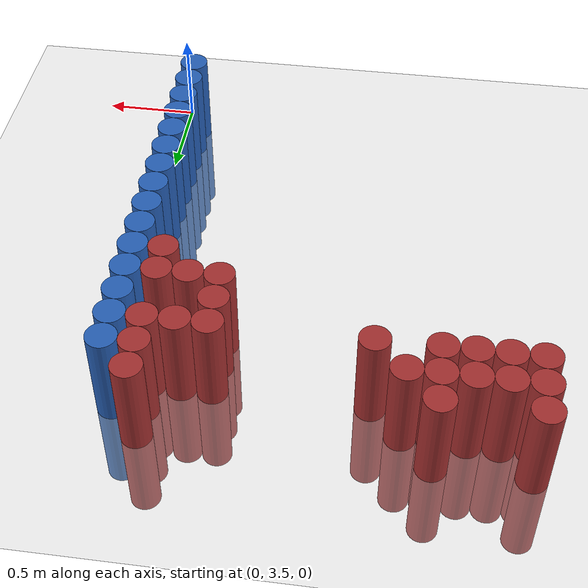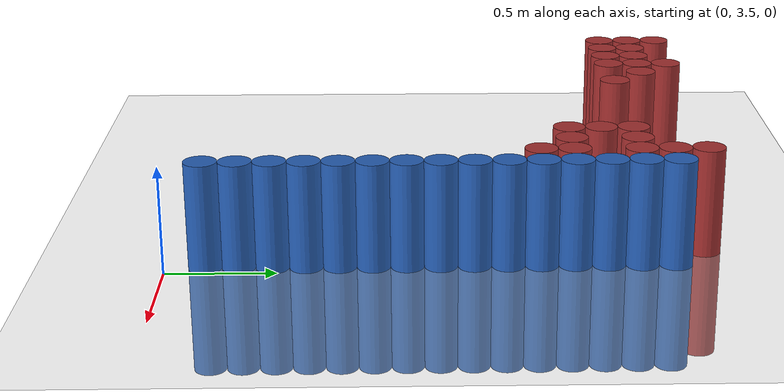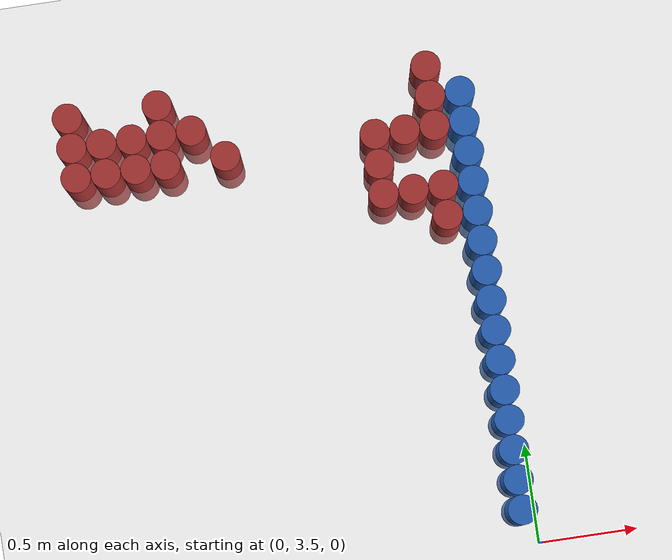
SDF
<sdf version="1.6">
 <world name="default">
  <model name="ground_plane">
   <static>1</static>
   <link name="link">
    <collision name="collision">
     <geometry><plane><normal>0 0 1</normal><size>100 100</size></plane></geometry>
     <surface><friction><ode><mu>100</mu><mu2>50</mu2></ode></friction></surface>
    </collision>
    <visual name="visual">
     <cast_shadows>0</cast_shadows>
     <geometry><plane><normal>0 0 1</normal><size>100 100</size></plane></geometry>
     <material>
      <script><uri>file://media/materials/scripts/gazebo.material</uri><name>Gazebo/Grey</name></script>
     </material>
    </visual>
   </link>
  </model>
  <model name="unit_cylinder_76">
   <static>1</static>
   <pose>-0.075000 3.675000 0.000000 0.000000 0.000000 0.000000</pose>
   <link name="link">
    <inertial>
     <mass>1</mass>
     <inertia><ixx>0.145833</ixx><ixy>0</ixy><ixz>0</ixz><iyy>0.145833</iyy><iyz>0</iyz><izz>0.125</izz></inertia>
    </inertial>
    <collision name="collision">
     <geometry><cylinder><radius>0.075000</radius><length>1</length></cylinder></geometry>
    </collision>
    <visual name="visual">
     <geometry><cylinder><radius>0.075000</radius><length>1</length></cylinder></geometry>
     <material>
      <ambient>0.152000 0.379000 0.720000 1</ambient>
      <diffuse>0.152000 0.379000 0.720000 1</diffuse>
     </material>
     <material>
      <script><name>Gazebo/Grey</name><uri>file://media/materials/scripts/gazebo.material</uri></script>
     </material>
    </visual>
    <sensor name="sensor_contact" type="contact"><contact><collision>collision</collision></contact></sensor>
   </link>
   <plugin filename="gz-sim-touchplugin-system" name="gz::sim::systems::TouchPlugin">
    <target>robot</target>
    <namespace>robot</namespace>
    <time>0.001</time>
    <enabled>true</enabled>
   </plugin>
  </model>
  <model name="unit_cylinder_78">
   <static>1</static>
   <pose>-0.075000 3.825000 0.000000 0.000000 0.000000 0.000000</pose>
   <link name="link">
    <inertial>
     <mass>1</mass>
     <inertia><ixx>0.145833</ixx><ixy>0</ixy><ixz>0</ixz><iyy>0.145833</iyy><iyz>0</iyz><izz>0.125</izz></inertia>
    </inertial>
    <collision name="collision">
     <geometry><cylinder><radius>0.075000</radius><length>1</length></cylinder></geometry>
    </collision>
    <visual name="visual">
     <geometry><cylinder><radius>0.075000</radius><length>1</length></cylinder></geometry>
     <material>
      <ambient>0.152000 0.379000 0.720000 1</ambient>
      <diffuse>0.152000 0.379000 0.720000 1</diffuse>
     </material>
     <material>
      <script><name>Gazebo/Grey</name><uri>file://media/materials/scripts/gazebo.material</uri></script>
     </material>
    </visual>
    <sensor name="sensor_contact" type="contact"><contact><collision>collision</collision></contact></sensor>
   </link>
   <plugin filename="gz-sim-touchplugin-system" name="gz::sim::systems::TouchPlugin">
    <target>robot</target>
    <namespace>robot</namespace>
    <time>0.001</time>
    <enabled>true</enabled>
   </plugin>
  </model>
  <model name="unit_cylinder_80">
   <static>1</static>
   <pose>-0.075000 3.975000 0.000000 0.000000 0.000000 0.000000</pose>
   <link name="link">
    <inertial>
     <mass>1</mass>
     <inertia><ixx>0.145833</ixx><ixy>0</ixy><ixz>0</ixz><iyy>0.145833</iyy><iyz>0</iyz><izz>0.125</izz></inertia>
    </inertial>
    <collision name="collision">
     <geometry><cylinder><radius>0.075000</radius><length>1</length></cylinder></geometry>
    </collision>
    <visual name="visual">
     <geometry><cylinder><radius>0.075000</radius><length>1</length></cylinder></geometry>
     <material>
      <ambient>0.152000 0.379000 0.720000 1</ambient>
      <diffuse>0.152000 0.379000 0.720000 1</diffuse>
     </material>
     <material>
      <script><name>Gazebo/Grey</name><uri>file://media/materials/scripts/gazebo.material</uri></script>
     </material>
    </visual>
    <sensor name="sensor_contact" type="contact"><contact><collision>collision</collision></contact></sensor>
   </link>
   <plugin filename="gz-sim-touchplugin-system" name="gz::sim::systems::TouchPlugin">
    <target>robot</target>
    <namespace>robot</namespace>
    <time>0.001</time>
    <enabled>true</enabled>
   </plugin>
  </model>
  <model name="unit_cylinder_82">
   <static>1</static>
   <pose>-0.075000 4.125000 0.000000 0.000000 0.000000 0.000000</pose>
   <link name="link">
    <inertial>
     <mass>1</mass>
     <inertia><ixx>0.145833</ixx><ixy>0</ixy><ixz>0</ixz><iyy>0.145833</iyy><iyz>0</iyz><izz>0.125</izz></inertia>
    </inertial>
    <collision name="collision">
     <geometry><cylinder><radius>0.075000</radius><length>1</length></cylinder></geometry>
    </collision>
    <visual name="visual">
     <geometry><cylinder><radius>0.075000</radius><length>1</length></cylinder></geometry>
     <material>
      <ambient>0.152000 0.379000 0.720000 1</ambient>
      <diffuse>0.152000 0.379000 0.720000 1</diffuse>
     </material>
     <material>
      <script><name>Gazebo/Grey</name><uri>file://media/materials/scripts/gazebo.material</uri></script>
     </material>
    </visual>
    <sensor name="sensor_contact" type="contact"><contact><collision>collision</collision></contact></sensor>
   </link>
   <plugin filename="gz-sim-touchplugin-system" name="gz::sim::systems::TouchPlugin">
    <target>robot</target>
    <namespace>robot</namespace>
    <time>0.001</time>
    <enabled>true</enabled>
   </plugin>
  </model>
  <model name="unit_cylinder_84">
   <static>1</static>
   <pose>-0.075000 4.275000 0.000000 0.000000 0.000000 0.000000</pose>
   <link name="link">
    <inertial>
     <mass>1</mass>
     <inertia><ixx>0.145833</ixx><ixy>0</ixy><ixz>0</ixz><iyy>0.145833</iyy><iyz>0</iyz><izz>0.125</izz></inertia>
    </inertial>
    <collision name="collision">
     <geometry><cylinder><radius>0.075000</radius><length>1</length></cylinder></geometry>
    </collision>
    <visual name="visual">
     <geometry><cylinder><radius>0.075000</radius><length>1</length></cylinder></geometry>
     <material>
      <ambient>0.152000 0.379000 0.720000 1</ambient>
      <diffuse>0.152000 0.379000 0.720000 1</diffuse>
     </material>
     <material>
      <script><name>Gazebo/Grey</name><uri>file://media/materials/scripts/gazebo.material</uri></script>
     </material>
    </visual>
    <sensor name="sensor_contact" type="contact"><contact><collision>collision</collision></contact></sensor>
   </link>
   <plugin filename="gz-sim-touchplugin-system" name="gz::sim::systems::TouchPlugin">
    <target>robot</target>
    <namespace>robot</namespace>
    <time>0.001</time>
    <enabled>true</enabled>
   </plugin>
  </model>
  <model name="unit_cylinder_86">
   <static>1</static>
   <pose>-0.075000 4.425000 0.000000 0.000000 0.000000 0.000000</pose>
   <link name="link">
    <inertial>
     <mass>1</mass>
     <inertia><ixx>0.145833</ixx><ixy>0</ixy><ixz>0</ixz><iyy>0.145833</iyy><iyz>0</iyz><izz>0.125</izz></inertia>
    </inertial>
    <collision name="collision">
     <geometry><cylinder><radius>0.075000</radius><length>1</length></cylinder></geometry>
    </collision>
    <visual name="visual">
     <geometry><cylinder><radius>0.075000</radius><length>1</length></cylinder></geometry>
     <material>
      <ambient>0.152000 0.379000 0.720000 1</ambient>
      <diffuse>0.152000 0.379000 0.720000 1</diffuse>
     </material>
     <material>
      <script><name>Gazebo/Grey</name><uri>file://media/materials/scripts/gazebo.material</uri></script>
     </material>
    </visual>
    <sensor name="sensor_contact" type="contact"><contact><collision>collision</collision></contact></sensor>
   </link>
   <plugin filename="gz-sim-touchplugin-system" name="gz::sim::systems::TouchPlugin">
    <target>robot</target>
    <namespace>robot</namespace>
    <time>0.001</time>
    <enabled>true</enabled>
   </plugin>
  </model>
  <model name="unit_cylinder_88">
   <static>1</static>
   <pose>-0.075000 4.575000 0.000000 0.000000 0.000000 0.000000</pose>
   <link name="link">
    <inertial>
     <mass>1</mass>
     <inertia><ixx>0.145833</ixx><ixy>0</ixy><ixz>0</ixz><iyy>0.145833</iyy><iyz>0</iyz><izz>0.125</izz></inertia>
    </inertial>
    <collision name="collision">
     <geometry><cylinder><radius>0.075000</radius><length>1</length></cylinder></geometry>
    </collision>
    <visual name="visual">
     <geometry><cylinder><radius>0.075000</radius><length>1</length></cylinder></geometry>
     <material>
      <ambient>0.152000 0.379000 0.720000 1</ambient>
      <diffuse>0.152000 0.379000 0.720000 1</diffuse>
     </material>
     <material>
      <script><name>Gazebo/Grey</name><uri>file://media/materials/scripts/gazebo.material</uri></script>
     </material>
    </visual>
    <sensor name="sensor_contact" type="contact"><contact><collision>collision</collision></contact></sensor>
   </link>
   <plugin filename="gz-sim-touchplugin-system" name="gz::sim::systems::TouchPlugin">
    <target>robot</target>
    <namespace>robot</namespace>
    <time>0.001</time>
    <enabled>true</enabled>
   </plugin>
  </model>
  <model name="unit_cylinder_90">
   <static>1</static>
   <pose>-0.075000 4.725000 0.000000 0.000000 0.000000 0.000000</pose>
   <link name="link">
    <inertial>
     <mass>1</mass>
     <inertia><ixx>0.145833</ixx><ixy>0</ixy><ixz>0</ixz><iyy>0.145833</iyy><iyz>0</iyz><izz>0.125</izz></inertia>
    </inertial>
    <collision name="collision">
     <geometry><cylinder><radius>0.075000</radius><length>1</length></cylinder></geometry>
    </collision>
    <visual name="visual">
     <geometry><cylinder><radius>0.075000</radius><length>1</length></cylinder></geometry>
     <material>
      <ambient>0.152000 0.379000 0.720000 1</ambient>
      <diffuse>0.152000 0.379000 0.720000 1</diffuse>
     </material>
     <material>
      <script><name>Gazebo/Grey</name><uri>file://media/materials/scripts/gazebo.material</uri></script>
     </material>
    </visual>
    <sensor name="sensor_contact" type="contact"><contact><collision>collision</collision></contact></sensor>
   </link>
   <plugin filename="gz-sim-touchplugin-system" name="gz::sim::systems::TouchPlugin">
    <target>robot</target>
    <namespace>robot</namespace>
    <time>0.001</time>
    <enabled>true</enabled>
   </plugin>
  </model>
  <model name="unit_cylinder_92">
   <static>1</static>
   <pose>-0.075000 4.875000 0.000000 0.000000 0.000000 0.000000</pose>
   <link name="link">
    <inertial>
     <mass>1</mass>
     <inertia><ixx>0.145833</ixx><ixy>0</ixy><ixz>0</ixz><iyy>0.145833</iyy><iyz>0</iyz><izz>0.125</izz></inertia>
    </inertial>
    <collision name="collision">
     <geometry><cylinder><radius>0.075000</radius><length>1</length></cylinder></geometry>
    </collision>
    <visual name="visual">
     <geometry><cylinder><radius>0.075000</radius><length>1</length></cylinder></geometry>
     <material>
      <ambient>0.152000 0.379000 0.720000 1</ambient>
      <diffuse>0.152000 0.379000 0.720000 1</diffuse>
     </material>
     <material>
      <script><name>Gazebo/Grey</name><uri>file://media/materials/scripts/gazebo.material</uri></script>
     </material>
    </visual>
    <sensor name="sensor_contact" type="contact"><contact><collision>collision</collision></contact></sensor>
   </link>
   <plugin filename="gz-sim-touchplugin-system" name="gz::sim::systems::TouchPlugin">
    <target>robot</target>
    <namespace>robot</namespace>
    <time>0.001</time>
    <enabled>true</enabled>
   </plugin>
  </model>
  <model name="unit_cylinder_94">
   <static>1</static>
   <pose>-0.075000 5.025000 0.000000 0.000000 0.000000 0.000000</pose>
   <link name="link">
    <inertial>
     <mass>1</mass>
     <inertia><ixx>0.145833</ixx><ixy>0</ixy><ixz>0</ixz><iyy>0.145833</iyy><iyz>0</iyz><izz>0.125</izz></inertia>
    </inertial>
    <collision name="collision">
     <geometry><cylinder><radius>0.075000</radius><length>1</length></cylinder></geometry>
    </collision>
    <visual name="visual">
     <geometry><cylinder><radius>0.075000</radius><length>1</length></cylinder></geometry>
     <material>
      <ambient>0.152000 0.379000 0.720000 1</ambient>
      <diffuse>0.152000 0.379000 0.720000 1</diffuse>
     </material>
     <material>
      <script><name>Gazebo/Grey</name><uri>file://media/materials/scripts/gazebo.material</uri></script>
     </material>
    </visual>
    <sensor name="sensor_contact" type="contact"><contact><collision>collision</collision></contact></sensor>
   </link>
   <plugin filename="gz-sim-touchplugin-system" name="gz::sim::systems::TouchPlugin">
    <target>robot</target>
    <namespace>robot</namespace>
    <time>0.001</time>
    <enabled>true</enabled>
   </plugin>
  </model>
  <model name="unit_cylinder_228">
   <static>1</static>
   <pose>-2.025000 5.625000 0.000000 0.000000 0.000000 0.000000</pose>
   <link name="link">
    <inertial>
     <mass>1</mass>
     <inertia><ixx>0.145833</ixx><ixy>0</ixy><ixz>0</ixz><iyy>0.145833</iyy><iyz>0</iyz><izz>0.125</izz></inertia>
    </inertial>
    <collision name="collision">
     <geometry><cylinder><radius>0.075000</radius><length>1</length></cylinder></geometry>
    </collision>
    <visual name="visual">
     <geometry><cylinder><radius>0.075000</radius><length>1</length></cylinder></geometry>
     <material>
      <ambient>0.648000 0.192000 0.192000 1</ambient>
      <diffuse>0.648000 0.192000 0.192000 1</diffuse>
     </material>
     <material>
      <script><name>Gazebo/Grey</name><uri>file://media/materials/scripts/gazebo.material</uri></script>
     </material>
    </visual>
    <sensor name="sensor_contact" type="contact"><contact><collision>collision</collision></contact></sensor>
   </link>
   <plugin filename="gz-sim-touchplugin-system" name="gz::sim::systems::TouchPlugin">
    <target>robot</target>
    <namespace>robot</namespace>
    <time>0.001</time>
    <enabled>true</enabled>
   </plugin>
  </model>
  <model name="unit_cylinder_229">
   <static>1</static>
   <pose>-2.025000 5.775000 0.000000 0.000000 0.000000 0.000000</pose>
   <link name="link">
    <inertial>
     <mass>1</mass>
     <inertia><ixx>0.145833</ixx><ixy>0</ixy><ixz>0</ixz><iyy>0.145833</iyy><iyz>0</iyz><izz>0.125</izz></inertia>
    </inertial>
    <collision name="collision">
     <geometry><cylinder><radius>0.075000</radius><length>1</length></cylinder></geometry>
    </collision>
    <visual name="visual">
     <geometry><cylinder><radius>0.075000</radius><length>1</length></cylinder></geometry>
     <material>
      <ambient>0.648000 0.192000 0.192000 1</ambient>
      <diffuse>0.648000 0.192000 0.192000 1</diffuse>
     </material>
     <material>
      <script><name>Gazebo/Grey</name><uri>file://media/materials/scripts/gazebo.material</uri></script>
     </material>
    </visual>
    <sensor name="sensor_contact" type="contact"><contact><collision>collision</collision></contact></sensor>
   </link>
   <plugin filename="gz-sim-touchplugin-system" name="gz::sim::systems::TouchPlugin">
    <target>robot</target>
    <namespace>robot</namespace>
    <time>0.001</time>
    <enabled>true</enabled>
   </plugin>
  </model>
  <model name="unit_cylinder_230">
   <static>1</static>
   <pose>-2.025000 5.925000 0.000000 0.000000 0.000000 0.000000</pose>
   <link name="link">
    <inertial>
     <mass>1</mass>
     <inertia><ixx>0.145833</ixx><ixy>0</ixy><ixz>0</ixz><iyy>0.145833</iyy><iyz>0</iyz><izz>0.125</izz></inertia>
    </inertial>
    <collision name="collision">
     <geometry><cylinder><radius>0.075000</radius><length>1</length></cylinder></geometry>
    </collision>
    <visual name="visual">
     <geometry><cylinder><radius>0.075000</radius><length>1</length></cylinder></geometry>
     <material>
      <ambient>0.648000 0.192000 0.192000 1</ambient>
      <diffuse>0.648000 0.192000 0.192000 1</diffuse>
     </material>
     <material>
      <script><name>Gazebo/Grey</name><uri>file://media/materials/scripts/gazebo.material</uri></script>
     </material>
    </visual>
    <sensor name="sensor_contact" type="contact"><contact><collision>collision</collision></contact></sensor>
   </link>
   <plugin filename="gz-sim-touchplugin-system" name="gz::sim::systems::TouchPlugin">
    <target>robot</target>
    <namespace>robot</namespace>
    <time>0.001</time>
    <enabled>true</enabled>
   </plugin>
  </model>
  <model name="unit_cylinder_239">
   <static>1</static>
   <pose>-1.875000 5.625000 0.000000 0.000000 0.000000 0.000000</pose>
   <link name="link">
    <inertial>
     <mass>1</mass>
     <inertia><ixx>0.145833</ixx><ixy>0</ixy><ixz>0</ixz><iyy>0.145833</iyy><iyz>0</iyz><izz>0.125</izz></inertia>
    </inertial>
    <collision name="collision">
     <geometry><cylinder><radius>0.075000</radius><length>1</length></cylinder></geometry>
    </collision>
    <visual name="visual">
     <geometry><cylinder><radius>0.075000</radius><length>1</length></cylinder></geometry>
     <material>
      <ambient>0.648000 0.192000 0.192000 1</ambient>
      <diffuse>0.648000 0.192000 0.192000 1</diffuse>
     </material>
     <material>
      <script><name>Gazebo/Grey</name><uri>file://media/materials/scripts/gazebo.material</uri></script>
     </material>
    </visual>
    <sensor name="sensor_contact" type="contact"><contact><collision>collision</collision></contact></sensor>
   </link>
   <plugin filename="gz-sim-touchplugin-system" name="gz::sim::systems::TouchPlugin">
    <target>robot</target>
    <namespace>robot</namespace>
    <time>0.001</time>
    <enabled>true</enabled>
   </plugin>
  </model>
  <model name="unit_cylinder_240">
   <static>1</static>
   <pose>-1.875000 5.775000 0.000000 0.000000 0.000000 0.000000</pose>
   <link name="link">
    <inertial>
     <mass>1</mass>
     <inertia><ixx>0.145833</ixx><ixy>0</ixy><ixz>0</ixz><iyy>0.145833</iyy><iyz>0</iyz><izz>0.125</izz></inertia>
    </inertial>
    <collision name="collision">
     <geometry><cylinder><radius>0.075000</radius><length>1</length></cylinder></geometry>
    </collision>
    <visual name="visual">
     <geometry><cylinder><radius>0.075000</radius><length>1</length></cylinder></geometry>
     <material>
      <ambient>0.648000 0.192000 0.192000 1</ambient>
      <diffuse>0.648000 0.192000 0.192000 1</diffuse>
     </material>
     <material>
      <script><name>Gazebo/Grey</name><uri>file://media/materials/scripts/gazebo.material</uri></script>
     </material>
    </visual>
    <sensor name="sensor_contact" type="contact"><contact><collision>collision</collision></contact></sensor>
   </link>
   <plugin filename="gz-sim-touchplugin-system" name="gz::sim::systems::TouchPlugin">
    <target>robot</target>
    <namespace>robot</namespace>
    <time>0.001</time>
    <enabled>true</enabled>
   </plugin>
  </model>
  <model name="unit_cylinder_242">
   <static>1</static>
   <pose>-1.725000 5.625000 0.000000 0.000000 0.000000 0.000000</pose>
   <link name="link">
    <inertial>
     <mass>1</mass>
     <inertia><ixx>0.145833</ixx><ixy>0</ixy><ixz>0</ixz><iyy>0.145833</iyy><iyz>0</iyz><izz>0.125</izz></inertia>
    </inertial>
    <collision name="collision">
     <geometry><cylinder><radius>0.075000</radius><length>1</length></cylinder></geometry>
    </collision>
    <visual name="visual">
     <geometry><cylinder><radius>0.075000</radius><length>1</length></cylinder></geometry>
     <material>
      <ambient>0.648000 0.192000 0.192000 1</ambient>
      <diffuse>0.648000 0.192000 0.192000 1</diffuse>
     </material>
     <material>
      <script><name>Gazebo/Grey</name><uri>file://media/materials/scripts/gazebo.material</uri></script>
     </material>
    </visual>
    <sensor name="sensor_contact" type="contact"><contact><collision>collision</collision></contact></sensor>
   </link>
   <plugin filename="gz-sim-touchplugin-system" name="gz::sim::systems::TouchPlugin">
    <target>robot</target>
    <namespace>robot</namespace>
    <time>0.001</time>
    <enabled>true</enabled>
   </plugin>
  </model>
  <model name="unit_cylinder_243">
   <static>1</static>
   <pose>-1.725000 5.775000 0.000000 0.000000 0.000000 0.000000</pose>
   <link name="link">
    <inertial>
     <mass>1</mass>
     <inertia><ixx>0.145833</ixx><ixy>0</ixy><ixz>0</ixz><iyy>0.145833</iyy><iyz>0</iyz><izz>0.125</izz></inertia>
    </inertial>
    <collision name="collision">
     <geometry><cylinder><radius>0.075000</radius><length>1</length></cylinder></geometry>
    </collision>
    <visual name="visual">
     <geometry><cylinder><radius>0.075000</radius><length>1</length></cylinder></geometry>
     <material>
      <ambient>0.648000 0.192000 0.192000 1</ambient>
      <diffuse>0.648000 0.192000 0.192000 1</diffuse>
     </material>
     <material>
      <script><name>Gazebo/Grey</name><uri>file://media/materials/scripts/gazebo.material</uri></script>
     </material>
    </visual>
    <sensor name="sensor_contact" type="contact"><contact><collision>collision</collision></contact></sensor>
   </link>
   <plugin filename="gz-sim-touchplugin-system" name="gz::sim::systems::TouchPlugin">
    <target>robot</target>
    <namespace>robot</namespace>
    <time>0.001</time>
    <enabled>true</enabled>
   </plugin>
  </model>
  <model name="unit_cylinder_244">
   <static>1</static>
   <pose>-1.575000 5.625000 0.000000 0.000000 0.000000 0.000000</pose>
   <link name="link">
    <inertial>
     <mass>1</mass>
     <inertia><ixx>0.145833</ixx><ixy>0</ixy><ixz>0</ixz><iyy>0.145833</iyy><iyz>0</iyz><izz>0.125</izz></inertia>
    </inertial>
    <collision name="collision">
     <geometry><cylinder><radius>0.075000</radius><length>1</length></cylinder></geometry>
    </collision>
    <visual name="visual">
     <geometry><cylinder><radius>0.075000</radius><length>1</length></cylinder></geometry>
     <material>
      <ambient>0.648000 0.192000 0.192000 1</ambient>
      <diffuse>0.648000 0.192000 0.192000 1</diffuse>
     </material>
     <material>
      <script><name>Gazebo/Grey</name><uri>file://media/materials/scripts/gazebo.material</uri></script>
     </material>
    </visual>
    <sensor name="sensor_contact" type="contact"><contact><collision>collision</collision></contact></sensor>
   </link>
   <plugin filename="gz-sim-touchplugin-system" name="gz::sim::systems::TouchPlugin">
    <target>robot</target>
    <namespace>robot</namespace>
    <time>0.001</time>
    <enabled>true</enabled>
   </plugin>
  </model>
  <model name="unit_cylinder_245">
   <static>1</static>
   <pose>-1.575000 5.775000 0.000000 0.000000 0.000000 0.000000</pose>
   <link name="link">
    <inertial>
     <mass>1</mass>
     <inertia><ixx>0.145833</ixx><ixy>0</ixy><ixz>0</ixz><iyy>0.145833</iyy><iyz>0</iyz><izz>0.125</izz></inertia>
    </inertial>
    <collision name="collision">
     <geometry><cylinder><radius>0.075000</radius><length>1</length></cylinder></geometry>
    </collision>
    <visual name="visual">
     <geometry><cylinder><radius>0.075000</radius><length>1</length></cylinder></geometry>
     <material>
      <ambient>0.648000 0.192000 0.192000 1</ambient>
      <diffuse>0.648000 0.192000 0.192000 1</diffuse>
     </material>
     <material>
      <script><name>Gazebo/Grey</name><uri>file://media/materials/scripts/gazebo.material</uri></script>
     </material>
    </visual>
    <sensor name="sensor_contact" type="contact"><contact><collision>collision</collision></contact></sensor>
   </link>
   <plugin filename="gz-sim-touchplugin-system" name="gz::sim::systems::TouchPlugin">
    <target>robot</target>
    <namespace>robot</namespace>
    <time>0.001</time>
    <enabled>true</enabled>
   </plugin>
  </model>
  <model name="unit_cylinder_246">
   <static>1</static>
   <pose>-1.575000 5.925000 0.000000 0.000000 0.000000 0.000000</pose>
   <link name="link">
    <inertial>
     <mass>1</mass>
     <inertia><ixx>0.145833</ixx><ixy>0</ixy><ixz>0</ixz><iyy>0.145833</iyy><iyz>0</iyz><izz>0.125</izz></inertia>
    </inertial>
    <collision name="collision">
     <geometry><cylinder><radius>0.075000</radius><length>1</length></cylinder></geometry>
    </collision>
    <visual name="visual">
     <geometry><cylinder><radius>0.075000</radius><length>1</length></cylinder></geometry>
     <material>
      <ambient>0.648000 0.192000 0.192000 1</ambient>
      <diffuse>0.648000 0.192000 0.192000 1</diffuse>
     </material>
     <material>
      <script><name>Gazebo/Grey</name><uri>file://media/materials/scripts/gazebo.material</uri></script>
     </material>
    </visual>
    <sensor name="sensor_contact" type="contact"><contact><collision>collision</collision></contact></sensor>
   </link>
   <plugin filename="gz-sim-touchplugin-system" name="gz::sim::systems::TouchPlugin">
    <target>robot</target>
    <namespace>robot</namespace>
    <time>0.001</time>
    <enabled>true</enabled>
   </plugin>
  </model>
  <model name="unit_cylinder_247">
   <static>1</static>
   <pose>-1.425000 5.775000 0.000000 0.000000 0.000000 0.000000</pose>
   <link name="link">
    <inertial>
     <mass>1</mass>
     <inertia><ixx>0.145833</ixx><ixy>0</ixy><ixz>0</ixz><iyy>0.145833</iyy><iyz>0</iyz><izz>0.125</izz></inertia>
    </inertial>
    <collision name="collision">
     <geometry><cylinder><radius>0.075000</radius><length>1</length></cylinder></geometry>
    </collision>
    <visual name="visual">
     <geometry><cylinder><radius>0.075000</radius><length>1</length></cylinder></geometry>
     <material>
      <ambient>0.648000 0.192000 0.192000 1</ambient>
      <diffuse>0.648000 0.192000 0.192000 1</diffuse>
     </material>
     <material>
      <script><name>Gazebo/Grey</name><uri>file://media/materials/scripts/gazebo.material</uri></script>
     </material>
    </visual>
    <sensor name="sensor_contact" type="contact"><contact><collision>collision</collision></contact></sensor>
   </link>
   <plugin filename="gz-sim-touchplugin-system" name="gz::sim::systems::TouchPlugin">
    <target>robot</target>
    <namespace>robot</namespace>
    <time>0.001</time>
    <enabled>true</enabled>
   </plugin>
  </model>
  <model name="unit_cylinder_249">
   <static>1</static>
   <pose>-1.275000 5.625000 0.000000 0.000000 0.000000 0.000000</pose>
   <link name="link">
    <inertial>
     <mass>1</mass>
     <inertia><ixx>0.145833</ixx><ixy>0</ixy><ixz>0</ixz><iyy>0.145833</iyy><iyz>0</iyz><izz>0.125</izz></inertia>
    </inertial>
    <collision name="collision">
     <geometry><cylinder><radius>0.075000</radius><length>1</length></cylinder></geometry>
    </collision>
    <visual name="visual">
     <geometry><cylinder><radius>0.075000</radius><length>1</length></cylinder></geometry>
     <material>
      <ambient>0.648000 0.192000 0.192000 1</ambient>
      <diffuse>0.648000 0.192000 0.192000 1</diffuse>
     </material>
     <material>
      <script><name>Gazebo/Grey</name><uri>file://media/materials/scripts/gazebo.material</uri></script>
     </material>
    </visual>
    <sensor name="sensor_contact" type="contact"><contact><collision>collision</collision></contact></sensor>
   </link>
   <plugin filename="gz-sim-touchplugin-system" name="gz::sim::systems::TouchPlugin">
    <target>robot</target>
    <namespace>robot</namespace>
    <time>0.001</time>
    <enabled>true</enabled>
   </plugin>
  </model>
  <model name="unit_cylinder_264">
   <static>1</static>
   <pose>-0.525000 5.325000 0.000000 0.000000 0.000000 0.000000</pose>
   <link name="link">
    <inertial>
     <mass>1</mass>
     <inertia><ixx>0.145833</ixx><ixy>0</ixy><ixz>0</ixz><iyy>0.145833</iyy><iyz>0</iyz><izz>0.125</izz></inertia>
    </inertial>
    <collision name="collision">
     <geometry><cylinder><radius>0.075000</radius><length>1</length></cylinder></geometry>
    </collision>
    <visual name="visual">
     <geometry><cylinder><radius>0.075000</radius><length>1</length></cylinder></geometry>
     <material>
      <ambient>0.648000 0.192000 0.192000 1</ambient>
      <diffuse>0.648000 0.192000 0.192000 1</diffuse>
     </material>
     <material>
      <script><name>Gazebo/Grey</name><uri>file://media/materials/scripts/gazebo.material</uri></script>
     </material>
    </visual>
    <sensor name="sensor_contact" type="contact"><contact><collision>collision</collision></contact></sensor>
   </link>
   <plugin filename="gz-sim-touchplugin-system" name="gz::sim::systems::TouchPlugin">
    <target>robot</target>
    <namespace>robot</namespace>
    <time>0.001</time>
    <enabled>true</enabled>
   </plugin>
  </model>
  <model name="unit_cylinder_265">
   <static>1</static>
   <pose>-0.525000 5.475000 0.000000 0.000000 0.000000 0.000000</pose>
   <link name="link">
    <inertial>
     <mass>1</mass>
     <inertia><ixx>0.145833</ixx><ixy>0</ixy><ixz>0</ixz><iyy>0.145833</iyy><iyz>0</iyz><izz>0.125</izz></inertia>
    </inertial>
    <collision name="collision">
     <geometry><cylinder><radius>0.075000</radius><length>1</length></cylinder></geometry>
    </collision>
    <visual name="visual">
     <geometry><cylinder><radius>0.075000</radius><length>1</length></cylinder></geometry>
     <material>
      <ambient>0.648000 0.192000 0.192000 1</ambient>
      <diffuse>0.648000 0.192000 0.192000 1</diffuse>
     </material>
     <material>
      <script><name>Gazebo/Grey</name><uri>file://media/materials/scripts/gazebo.material</uri></script>
     </material>
    </visual>
    <sensor name="sensor_contact" type="contact"><contact><collision>collision</collision></contact></sensor>
   </link>
   <plugin filename="gz-sim-touchplugin-system" name="gz::sim::systems::TouchPlugin">
    <target>robot</target>
    <namespace>robot</namespace>
    <time>0.001</time>
    <enabled>true</enabled>
   </plugin>
  </model>
  <model name="unit_cylinder_266">
   <static>1</static>
   <pose>-0.525000 5.625000 0.000000 0.000000 0.000000 0.000000</pose>
   <link name="link">
    <inertial>
     <mass>1</mass>
     <inertia><ixx>0.145833</ixx><ixy>0</ixy><ixz>0</ixz><iyy>0.145833</iyy><iyz>0</iyz><izz>0.125</izz></inertia>
    </inertial>
    <collision name="collision">
     <geometry><cylinder><radius>0.075000</radius><length>1</length></cylinder></geometry>
    </collision>
    <visual name="visual">
     <geometry><cylinder><radius>0.075000</radius><length>1</length></cylinder></geometry>
     <material>
      <ambient>0.648000 0.192000 0.192000 1</ambient>
      <diffuse>0.648000 0.192000 0.192000 1</diffuse>
     </material>
     <material>
      <script><name>Gazebo/Grey</name><uri>file://media/materials/scripts/gazebo.material</uri></script>
     </material>
    </visual>
    <sensor name="sensor_contact" type="contact"><contact><collision>collision</collision></contact></sensor>
   </link>
   <plugin filename="gz-sim-touchplugin-system" name="gz::sim::systems::TouchPlugin">
    <target>robot</target>
    <namespace>robot</namespace>
    <time>0.001</time>
    <enabled>true</enabled>
   </plugin>
  </model>
  <model name="unit_cylinder_278">
   <static>1</static>
   <pose>-0.375000 5.325000 0.000000 0.000000 0.000000 0.000000</pose>
   <link name="link">
    <inertial>
     <mass>1</mass>
     <inertia><ixx>0.145833</ixx><ixy>0</ixy><ixz>0</ixz><iyy>0.145833</iyy><iyz>0</iyz><izz>0.125</izz></inertia>
    </inertial>
    <collision name="collision">
     <geometry><cylinder><radius>0.075000</radius><length>1</length></cylinder></geometry>
    </collision>
    <visual name="visual">
     <geometry><cylinder><radius>0.075000</radius><length>1</length></cylinder></geometry>
     <material>
      <ambient>0.648000 0.192000 0.192000 1</ambient>
      <diffuse>0.648000 0.192000 0.192000 1</diffuse>
     </material>
     <material>
      <script><name>Gazebo/Grey</name><uri>file://media/materials/scripts/gazebo.material</uri></script>
     </material>
    </visual>
    <sensor name="sensor_contact" type="contact"><contact><collision>collision</collision></contact></sensor>
   </link>
   <plugin filename="gz-sim-touchplugin-system" name="gz::sim::systems::TouchPlugin">
    <target>robot</target>
    <namespace>robot</namespace>
    <time>0.001</time>
    <enabled>true</enabled>
   </plugin>
  </model>
  <model name="unit_cylinder_279">
   <static>1</static>
   <pose>-0.375000 5.625000 0.000000 0.000000 0.000000 0.000000</pose>
   <link name="link">
    <inertial>
     <mass>1</mass>
     <inertia><ixx>0.145833</ixx><ixy>0</ixy><ixz>0</ixz><iyy>0.145833</iyy><iyz>0</iyz><izz>0.125</izz></inertia>
    </inertial>
    <collision name="collision">
     <geometry><cylinder><radius>0.075000</radius><length>1</length></cylinder></geometry>
    </collision>
    <visual name="visual">
     <geometry><cylinder><radius>0.075000</radius><length>1</length></cylinder></geometry>
     <material>
      <ambient>0.648000 0.192000 0.192000 1</ambient>
      <diffuse>0.648000 0.192000 0.192000 1</diffuse>
     </material>
     <material>
      <script><name>Gazebo/Grey</name><uri>file://media/materials/scripts/gazebo.material</uri></script>
     </material>
    </visual>
    <sensor name="sensor_contact" type="contact"><contact><collision>collision</collision></contact></sensor>
   </link>
   <plugin filename="gz-sim-touchplugin-system" name="gz::sim::systems::TouchPlugin">
    <target>robot</target>
    <namespace>robot</namespace>
    <time>0.001</time>
    <enabled>true</enabled>
   </plugin>
  </model>
  <model name="unit_cylinder_291">
   <static>1</static>
   <pose>-0.225000 5.175000 0.000000 0.000000 0.000000 0.000000</pose>
   <link name="link">
    <inertial>
     <mass>1</mass>
     <inertia><ixx>0.145833</ixx><ixy>0</ixy><ixz>0</ixz><iyy>0.145833</iyy><iyz>0</iyz><izz>0.125</izz></inertia>
    </inertial>
    <collision name="collision">
     <geometry><cylinder><radius>0.075000</radius><length>1</length></cylinder></geometry>
    </collision>
    <visual name="visual">
     <geometry><cylinder><radius>0.075000</radius><length>1</length></cylinder></geometry>
     <material>
      <ambient>0.648000 0.192000 0.192000 1</ambient>
      <diffuse>0.648000 0.192000 0.192000 1</diffuse>
     </material>
     <material>
      <script><name>Gazebo/Grey</name><uri>file://media/materials/scripts/gazebo.material</uri></script>
     </material>
    </visual>
    <sensor name="sensor_contact" type="contact"><contact><collision>collision</collision></contact></sensor>
   </link>
   <plugin filename="gz-sim-touchplugin-system" name="gz::sim::systems::TouchPlugin">
    <target>robot</target>
    <namespace>robot</namespace>
    <time>0.001</time>
    <enabled>true</enabled>
   </plugin>
  </model>
  <model name="unit_cylinder_292">
   <static>1</static>
   <pose>-0.225000 5.325000 0.000000 0.000000 0.000000 0.000000</pose>
   <link name="link">
    <inertial>
     <mass>1</mass>
     <inertia><ixx>0.145833</ixx><ixy>0</ixy><ixz>0</ixz><iyy>0.145833</iyy><iyz>0</iyz><izz>0.125</izz></inertia>
    </inertial>
    <collision name="collision">
     <geometry><cylinder><radius>0.075000</radius><length>1</length></cylinder></geometry>
    </collision>
    <visual name="visual">
     <geometry><cylinder><radius>0.075000</radius><length>1</length></cylinder></geometry>
     <material>
      <ambient>0.648000 0.192000 0.192000 1</ambient>
      <diffuse>0.648000 0.192000 0.192000 1</diffuse>
     </material>
     <material>
      <script><name>Gazebo/Grey</name><uri>file://media/materials/scripts/gazebo.material</uri></script>
     </material>
    </visual>
    <sensor name="sensor_contact" type="contact"><contact><collision>collision</collision></contact></sensor>
   </link>
   <plugin filename="gz-sim-touchplugin-system" name="gz::sim::systems::TouchPlugin">
    <target>robot</target>
    <namespace>robot</namespace>
    <time>0.001</time>
    <enabled>true</enabled>
   </plugin>
  </model>
  <model name="unit_cylinder_293">
   <static>1</static>
   <pose>-0.225000 5.625000 0.000000 0.000000 0.000000 0.000000</pose>
   <link name="link">
    <inertial>
     <mass>1</mass>
     <inertia><ixx>0.145833</ixx><ixy>0</ixy><ixz>0</ixz><iyy>0.145833</iyy><iyz>0</iyz><izz>0.125</izz></inertia>
    </inertial>
    <collision name="collision">
     <geometry><cylinder><radius>0.075000</radius><length>1</length></cylinder></geometry>
    </collision>
    <visual name="visual">
     <geometry><cylinder><radius>0.075000</radius><length>1</length></cylinder></geometry>
     <material>
      <ambient>0.648000 0.192000 0.192000 1</ambient>
      <diffuse>0.648000 0.192000 0.192000 1</diffuse>
     </material>
     <material>
      <script><name>Gazebo/Grey</name><uri>file://media/materials/scripts/gazebo.material</uri></script>
     </material>
    </visual>
    <sensor name="sensor_contact" type="contact"><contact><collision>collision</collision></contact></sensor>
   </link>
   <plugin filename="gz-sim-touchplugin-system" name="gz::sim::systems::TouchPlugin">
    <target>robot</target>
    <namespace>robot</namespace>
    <time>0.001</time>
    <enabled>true</enabled>
   </plugin>
  </model>
  <model name="unit_cylinder_294">
   <static>1</static>
   <pose>-0.225000 5.775000 0.000000 0.000000 0.000000 0.000000</pose>
   <link name="link">
    <inertial>
     <mass>1</mass>
     <inertia><ixx>0.145833</ixx><ixy>0</ixy><ixz>0</ixz><iyy>0.145833</iyy><iyz>0</iyz><izz>0.125</izz></inertia>
    </inertial>
    <collision name="collision">
     <geometry><cylinder><radius>0.075000</radius><length>1</length></cylinder></geometry>
    </collision>
    <visual name="visual">
     <geometry><cylinder><radius>0.075000</radius><length>1</length></cylinder></geometry>
     <material>
      <ambient>0.648000 0.192000 0.192000 1</ambient>
      <diffuse>0.648000 0.192000 0.192000 1</diffuse>
     </material>
     <material>
      <script><name>Gazebo/Grey</name><uri>file://media/materials/scripts/gazebo.material</uri></script>
     </material>
    </visual>
    <sensor name="sensor_contact" type="contact"><contact><collision>collision</collision></contact></sensor>
   </link>
   <plugin filename="gz-sim-touchplugin-system" name="gz::sim::systems::TouchPlugin">
    <target>robot</target>
    <namespace>robot</namespace>
    <time>0.001</time>
    <enabled>true</enabled>
   </plugin>
  </model>
  <model name="unit_cylinder_295">
   <static>1</static>
   <pose>-0.225000 5.925000 0.000000 0.000000 0.000000 0.000000</pose>
   <link name="link">
    <inertial>
     <mass>1</mass>
     <inertia><ixx>0.145833</ixx><ixy>0</ixy><ixz>0</ixz><iyy>0.145833</iyy><iyz>0</iyz><izz>0.125</izz></inertia>
    </inertial>
    <collision name="collision">
     <geometry><cylinder><radius>0.075000</radius><length>1</length></cylinder></geometry>
    </collision>
    <visual name="visual">
     <geometry><cylinder><radius>0.075000</radius><length>1</length></cylinder></geometry>
     <material>
      <ambient>0.648000 0.192000 0.192000 1</ambient>
      <diffuse>0.648000 0.192000 0.192000 1</diffuse>
     </material>
     <material>
      <script><name>Gazebo/Grey</name><uri>file://media/materials/scripts/gazebo.material</uri></script>
     </material>
    </visual>
    <sensor name="sensor_contact" type="contact"><contact><collision>collision</collision></contact></sensor>
   </link>
   <plugin filename="gz-sim-touchplugin-system" name="gz::sim::systems::TouchPlugin">
    <target>robot</target>
    <namespace>robot</namespace>
    <time>0.001</time>
    <enabled>true</enabled>
   </plugin>
  </model>
  <model name="unit_cylinder_309">
   <static>1</static>
   <pose>-0.075000 5.175000 0.000000 0.000000 0.000000 0.000000</pose>
   <link name="link">
    <inertial>
     <mass>1</mass>
     <inertia><ixx>0.145833</ixx><ixy>0</ixy><ixz>0</ixz><iyy>0.145833</iyy><iyz>0</iyz><izz>0.125</izz></inertia>
    </inertial>
    <collision name="collision">
     <geometry><cylinder><radius>0.075000</radius><length>1</length></cylinder></geometry>
    </collision>
    <visual name="visual">
     <geometry><cylinder><radius>0.075000</radius><length>1</length></cylinder></geometry>
     <material>
      <ambient>0.152000 0.379000 0.720000 1</ambient>
      <diffuse>0.152000 0.379000 0.720000 1</diffuse>
     </material>
     <material>
      <script><name>Gazebo/Grey</name><uri>file://media/materials/scripts/gazebo.material</uri></script>
     </material>
    </visual>
    <sensor name="sensor_contact" type="contact"><contact><collision>collision</collision></contact></sensor>
   </link>
   <plugin filename="gz-sim-touchplugin-system" name="gz::sim::systems::TouchPlugin">
    <target>robot</target>
    <namespace>robot</namespace>
    <time>0.001</time>
    <enabled>true</enabled>
   </plugin>
  </model>
  <model name="unit_cylinder_310">
   <static>1</static>
   <pose>-0.075000 5.325000 0.000000 0.000000 0.000000 0.000000</pose>
   <link name="link">
    <inertial>
     <mass>1</mass>
     <inertia><ixx>0.145833</ixx><ixy>0</ixy><ixz>0</ixz><iyy>0.145833</iyy><iyz>0</iyz><izz>0.125</izz></inertia>
    </inertial>
    <collision name="collision">
     <geometry><cylinder><radius>0.075000</radius><length>1</length></cylinder></geometry>
    </collision>
    <visual name="visual">
     <geometry><cylinder><radius>0.075000</radius><length>1</length></cylinder></geometry>
     <material>
      <ambient>0.152000 0.379000 0.720000 1</ambient>
      <diffuse>0.152000 0.379000 0.720000 1</diffuse>
     </material>
     <material>
      <script><name>Gazebo/Grey</name><uri>file://media/materials/scripts/gazebo.material</uri></script>
     </material>
    </visual>
    <sensor name="sensor_contact" type="contact"><contact><collision>collision</collision></contact></sensor>
   </link>
   <plugin filename="gz-sim-touchplugin-system" name="gz::sim::systems::TouchPlugin">
    <target>robot</target>
    <namespace>robot</namespace>
    <time>0.001</time>
    <enabled>true</enabled>
   </plugin>
  </model>
  <model name="unit_cylinder_311">
   <static>1</static>
   <pose>-0.075000 5.475000 0.000000 0.000000 0.000000 0.000000</pose>
   <link name="link">
    <inertial>
     <mass>1</mass>
     <inertia><ixx>0.145833</ixx><ixy>0</ixy><ixz>0</ixz><iyy>0.145833</iyy><iyz>0</iyz><izz>0.125</izz></inertia>
    </inertial>
    <collision name="collision">
     <geometry><cylinder><radius>0.075000</radius><length>1</length></cylinder></geometry>
    </collision>
    <visual name="visual">
     <geometry><cylinder><radius>0.075000</radius><length>1</length></cylinder></geometry>
     <material>
      <ambient>0.152000 0.379000 0.720000 1</ambient>
      <diffuse>0.152000 0.379000 0.720000 1</diffuse>
     </material>
     <material>
      <script><name>Gazebo/Grey</name><uri>file://media/materials/scripts/gazebo.material</uri></script>
     </material>
    </visual>
    <sensor name="sensor_contact" type="contact"><contact><collision>collision</collision></contact></sensor>
   </link>
   <plugin filename="gz-sim-touchplugin-system" name="gz::sim::systems::TouchPlugin">
    <target>robot</target>
    <namespace>robot</namespace>
    <time>0.001</time>
    <enabled>true</enabled>
   </plugin>
  </model>
  <model name="unit_cylinder_312">
   <static>1</static>
   <pose>-0.075000 5.625000 0.000000 0.000000 0.000000 0.000000</pose>
   <link name="link">
    <inertial>
     <mass>1</mass>
     <inertia><ixx>0.145833</ixx><ixy>0</ixy><ixz>0</ixz><iyy>0.145833</iyy><iyz>0</iyz><izz>0.125</izz></inertia>
    </inertial>
    <collision name="collision">
     <geometry><cylinder><radius>0.075000</radius><length>1</length></cylinder></geometry>
    </collision>
    <visual name="visual">
     <geometry><cylinder><radius>0.075000</radius><length>1</length></cylinder></geometry>
     <material>
      <ambient>0.152000 0.379000 0.720000 1</ambient>
      <diffuse>0.152000 0.379000 0.720000 1</diffuse>
     </material>
     <material>
      <script><name>Gazebo/Grey</name><uri>file://media/materials/scripts/gazebo.material</uri></script>
     </material>
    </visual>
    <sensor name="sensor_contact" type="contact"><contact><collision>collision</collision></contact></sensor>
   </link>
   <plugin filename="gz-sim-touchplugin-system" name="gz::sim::systems::TouchPlugin">
    <target>robot</target>
    <namespace>robot</namespace>
    <time>0.001</time>
    <enabled>true</enabled>
   </plugin>
  </model>
  <model name="unit_cylinder_313">
   <static>1</static>
   <pose>-0.075000 5.775000 0.000000 0.000000 0.000000 0.000000</pose>
   <link name="link">
    <inertial>
     <mass>1</mass>
     <inertia><ixx>0.145833</ixx><ixy>0</ixy><ixz>0</ixz><iyy>0.145833</iyy><iyz>0</iyz><izz>0.125</izz></inertia>
    </inertial>
    <collision name="collision">
     <geometry><cylinder><radius>0.075000</radius><length>1</length></cylinder></geometry>
    </collision>
    <visual name="visual">
     <geometry><cylinder><radius>0.075000</radius><length>1</length></cylinder></geometry>
     <material>
      <ambient>0.152000 0.379000 0.720000 1</ambient>
      <diffuse>0.152000 0.379000 0.720000 1</diffuse>
     </material>
     <material>
      <script><name>Gazebo/Grey</name><uri>file://media/materials/scripts/gazebo.material</uri></script>
     </material>
    </visual>
    <sensor name="sensor_contact" type="contact"><contact><collision>collision</collision></contact></sensor>
   </link>
   <plugin filename="gz-sim-touchplugin-system" name="gz::sim::systems::TouchPlugin">
    <target>robot</target>
    <namespace>robot</namespace>
    <time>0.001</time>
    <enabled>true</enabled>
   </plugin>
  </model>
 </world>
</sdf>
